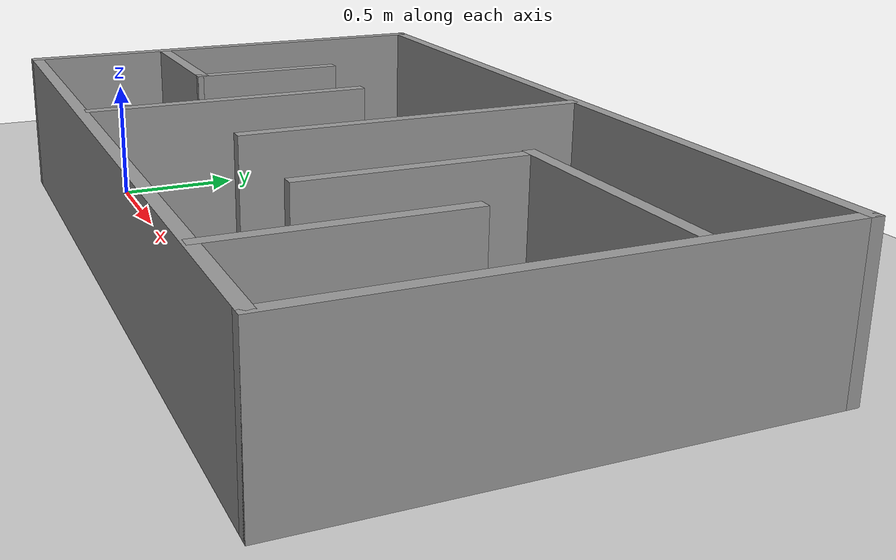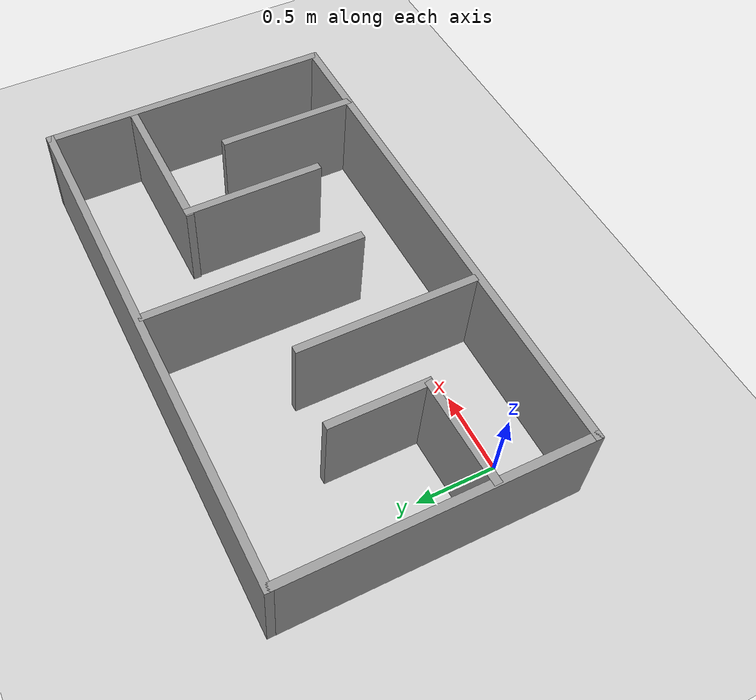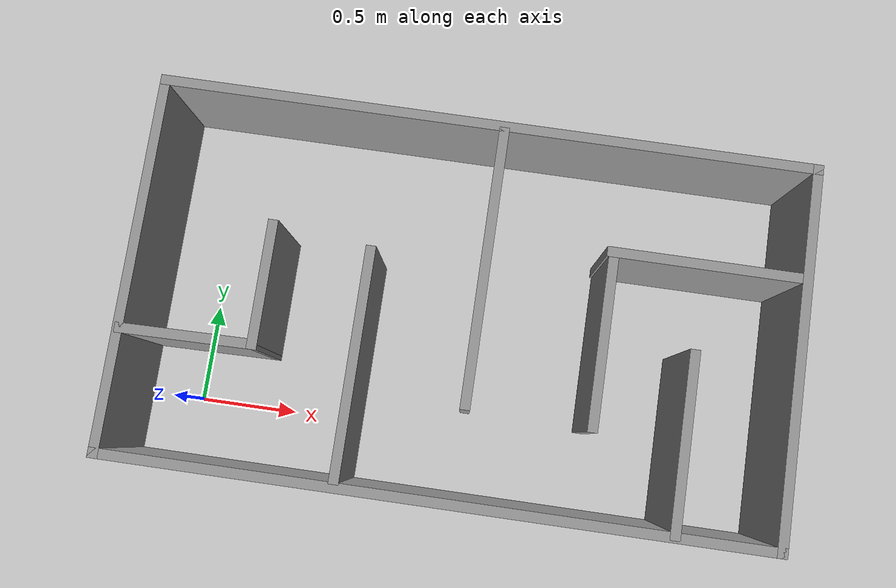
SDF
<sdf version="1.7">
 <world name="default">
  <light name="sun" type="directional">
   <pose>0 0 10 0 -0 0</pose>
   <diffuse>0.8 0.8 0.8 1</diffuse>
   <specular>0.2 0.2 0.2 1</specular>
   <attenuation>
    <range>1000</range>
    <constant>0.9</constant>
    <linear>0.01</linear>
    <quadratic>0.001</quadratic>
   </attenuation>
   <direction>-0.5 0.1 -0.9</direction>
   <spot><inner_angle>0</inner_angle><outer_angle>0</outer_angle><falloff>0</falloff></spot>
  </light>
  <model name="ground_plane">
   <static>1</static>
   <link name="link">
    <collision name="collision">
     <geometry><plane><normal>0 0 1</normal><size>100 100</size></plane></geometry>
     <surface>
      <contact><collide_bitmask>65535</collide_bitmask></contact>
      <friction><ode><mu>100</mu><mu2>50</mu2></ode></friction>
     </surface>
    </collision>
    <visual name="visual">
     <cast_shadows>0</cast_shadows>
     <geometry><plane><normal>0 0 1</normal><size>100 100</size></plane></geometry>
     <material>
      <script><uri>file://media/materials/scripts/gazebo.material</uri><name>Gazebo/Grey</name></script>
     </material>
    </visual>
   </link>
  </model>
  <gravity>0 0 -9.8</gravity>
  <magnetic_field>6e-06 2.3e-05 -4.2e-05</magnetic_field>
  <atmosphere type="adiabatic"/>
  <physics type="ode">
   <max_step_size>0.001</max_step_size>
   <real_time_factor>1</real_time_factor>
   <real_time_update_rate>1000</real_time_update_rate>
  </physics>
  <scene><ambient>0.4 0.4 0.4 1</ambient><background>0.7 0.7 0.7 1</background><shadows>1</shadows></scene>
  <audio><device>default</device></audio>
  <spherical_coordinates>
   <surface_model>EARTH_WGS84</surface_model>
   <latitude_deg>0</latitude_deg>
   <longitude_deg>0</longitude_deg>
   <elevation>0</elevation>
   <heading_deg>0</heading_deg>
  </spherical_coordinates>
  <model name="thin_maze">
   <pose>1.325 0.605 0 0 -0 0</pose>
   <link name="Wall_14">
    <collision name="Wall_14_Collision">
     <geometry><box><size>0.690078 0.05 0.6</size></box></geometry>
     <pose>0 0 0.3 0 -0 0</pose>
    </collision>
    <visual name="Wall_14_Visual">
     <pose>0 0 0.3 0 -0 0</pose>
     <geometry><box><size>0.690078 0.05 0.6</size></box></geometry>
     <material>
      <script><uri>file://media/materials/scripts/gazebo.material</uri><name>Gazebo/Grey</name></script>
      <ambient>1 1 1 1</ambient>
     </material>
     <meta><layer>0</layer></meta>
    </visual>
    <pose>-1.295 -0.32 0 0 -0 0.015624</pose>
   </link>
   <link name="Wall_15">
    <collision name="Wall_15_Collision">
     <geometry><box><size>0.64 0.05 0.6</size></box></geometry>
     <pose>0 0 0.3 0 -0 0</pose>
    </collision>
    <visual name="Wall_15_Visual">
     <pose>0 0 0.3 0 -0 0</pose>
     <geometry><box><size>0.64 0.05 0.6</size></box></geometry>
     <material>
      <script><uri>file://media/materials/scripts/gazebo.material</uri><name>Gazebo/Grey</name></script>
      <ambient>1 1 1 1</ambient>
     </material>
     <meta><layer>0</layer></meta>
    </visual>
    <pose>-0.975 -0.02 0 0 -0 1.5708</pose>
   </link>
   <link name="Wall_18">
    <collision name="Wall_18_Collision">
     <geometry><box><size>1.15 0.05 0.6</size></box></geometry>
     <pose>0 0 0.3 0 -0 0</pose>
    </collision>
    <visual name="Wall_18_Visual">
     <pose>0 0 0.3 0 -0 0</pose>
     <geometry><box><size>1.15 0.05 0.6</size></box></geometry>
     <material>
      <script><uri>file://media/materials/scripts/gazebo.material</uri><name>Gazebo/Grey</name></script>
      <ambient>1 1 1 1</ambient>
     </material>
     <meta><layer>0</layer></meta>
    </visual>
    <pose>-0.485 -0.335 0 0 -0 1.5708</pose>
   </link>
   <link name="Wall_30">
    <collision name="Wall_30_Collision">
     <geometry><box><size>1.4 0.05 0.6</size></box></geometry>
     <pose>0 0 0.3 0 -0 0</pose>
    </collision>
    <visual name="Wall_30_Visual">
     <pose>0 0 0.3 0 -0 0</pose>
     <geometry><box><size>1.4 0.05 0.6</size></box></geometry>
     <material>
      <script><uri>file://media/materials/scripts/gazebo.material</uri><name>Gazebo/Grey</name></script>
      <ambient>1 1 1 1</ambient>
     </material>
     <meta><layer>0</layer></meta>
    </visual>
    <pose>0.075 0.22 0 0 -0 -1.5708</pose>
   </link>
   <link name="Wall_33">
    <collision name="Wall_33_Collision">
     <geometry><box><size>0.95 0.05 0.6</size></box></geometry>
     <pose>0 0 0.3 0 -0 0</pose>
    </collision>
    <visual name="Wall_33_Visual">
     <pose>0 0 0.3 0 -0 0</pose>
     <geometry><box><size>0.95 0.05 0.6</size></box></geometry>
     <material>
      <script><uri>file://media/materials/scripts/gazebo.material</uri><name>Gazebo/Grey</name></script>
      <ambient>1 1 1 1</ambient>
     </material>
     <meta><layer>0</layer></meta>
    </visual>
    <pose>1.125 0.375 0 0 -0 3.14159</pose>
   </link>
   <link name="Wall_34">
    <collision name="Wall_34_Collision">
     <geometry><box><size>0.9 0.05 0.6</size></box></geometry>
     <pose>0 0 0.3 0 -0 0</pose>
    </collision>
    <visual name="Wall_34_Visual">
     <pose>0 0 0.3 0 -0 0</pose>
     <geometry><box><size>0.9 0.05 0.6</size></box></geometry>
     <material>
      <script><uri>file://media/materials/scripts/gazebo.material</uri><name>Gazebo/Grey</name></script>
      <ambient>1 1 1 1</ambient>
     </material>
     <meta><layer>0</layer></meta>
    </visual>
    <pose>0.685 -0.05 0 0 -0 -1.5708</pose>
   </link>
   <link name="Wall_36">
    <collision name="Wall_36_Collision">
     <geometry><box><size>0.9 0.05 0.6</size></box></geometry>
     <pose>0 0 0.3 0 -0 0</pose>
    </collision>
    <visual name="Wall_36_Visual">
     <pose>0 0 0.3 0 -0 0</pose>
     <geometry><box><size>0.9 0.05 0.6</size></box></geometry>
     <material>
      <script><uri>file://media/materials/scripts/gazebo.material</uri><name>Gazebo/Grey</name></script>
      <ambient>1 1 1 1</ambient>
     </material>
     <meta><layer>0</layer></meta>
    </visual>
    <pose>1.125 -0.49 0 0 -0 -1.5708</pose>
   </link>
   <link name="Wall_6">
    <collision name="Wall_6_Collision">
     <geometry><box><size>3.3 0.05 0.6</size></box></geometry>
     <pose>0 0 0.3 0 -0 0</pose>
    </collision>
    <visual name="Wall_6_Visual">
     <pose>0 0 0.3 0 -0 0</pose>
     <geometry><box><size>3.3 0.05 0.6</size></box></geometry>
     <material>
      <script><uri>file://media/materials/scripts/gazebo.material</uri><name>Gazebo/Grey</name></script>
      <ambient>1 1 1 1</ambient>
     </material>
     <meta><layer>0</layer></meta>
    </visual>
    <pose>0 -0.925 0 0 -0 0</pose>
   </link>
   <link name="Wall_7">
    <collision name="Wall_7_Collision">
     <geometry><box><size>1.9 0.05 0.6</size></box></geometry>
     <pose>0 0 0.3 0 -0 0</pose>
    </collision>
    <visual name="Wall_7_Visual">
     <pose>0 0 0.3 0 -0 0</pose>
     <geometry><box><size>1.9 0.05 0.6</size></box></geometry>
     <material>
      <script><uri>file://media/materials/scripts/gazebo.material</uri><name>Gazebo/Grey</name></script>
      <ambient>1 1 1 1</ambient>
     </material>
     <meta><layer>0</layer></meta>
    </visual>
    <pose>1.625 0 0 0 -0 1.5708</pose>
   </link>
   <link name="Wall_8">
    <collision name="Wall_8_Collision">
     <geometry><box><size>3.3 0.05 0.6</size></box></geometry>
     <pose>0 0 0.3 0 -0 0</pose>
    </collision>
    <visual name="Wall_8_Visual">
     <pose>0 0 0.3 0 -0 0</pose>
     <geometry><box><size>3.3 0.05 0.6</size></box></geometry>
     <material>
      <script><uri>file://media/materials/scripts/gazebo.material</uri><name>Gazebo/Grey</name></script>
      <ambient>1 1 1 1</ambient>
     </material>
     <meta><layer>0</layer></meta>
    </visual>
    <pose>0 0.925 0 0 -0 3.14159</pose>
   </link>
   <link name="Wall_9">
    <collision name="Wall_9_Collision">
     <geometry><box><size>1.9 0.05 0.6</size></box></geometry>
     <pose>0 0 0.3 0 -0 0</pose>
    </collision>
    <visual name="Wall_9_Visual">
     <pose>0 0 0.3 0 -0 0</pose>
     <geometry><box><size>1.9 0.05 0.6</size></box></geometry>
     <material>
      <script><uri>file://media/materials/scripts/gazebo.material</uri><name>Gazebo/Grey</name></script>
      <ambient>1 1 1 1</ambient>
     </material>
     <meta><layer>0</layer></meta>
    </visual>
    <pose>-1.625 0 0 0 -0 -1.5708</pose>
   </link>
   <static>1</static>
  </model>
 </world>
</sdf>
